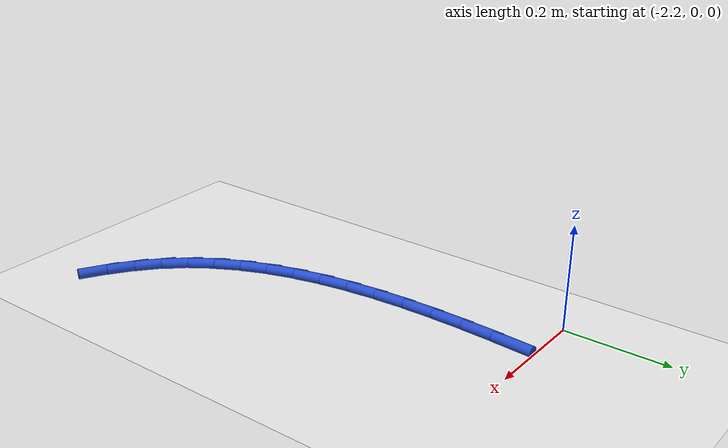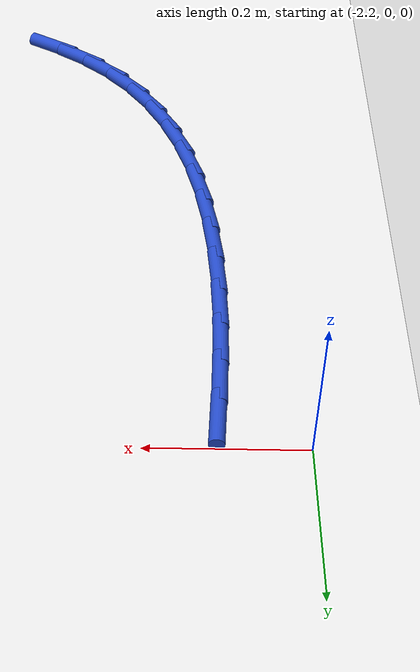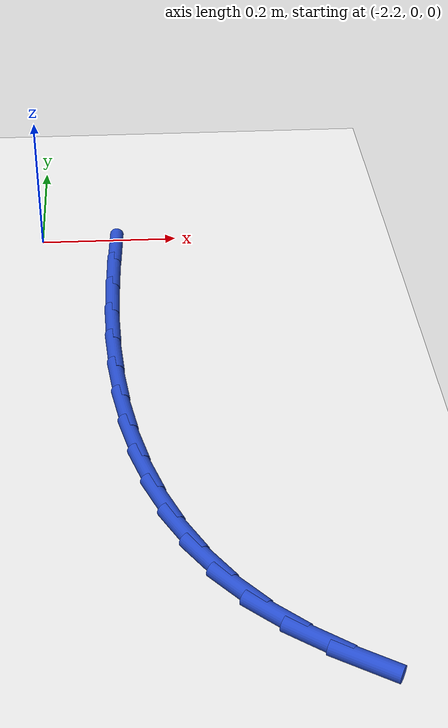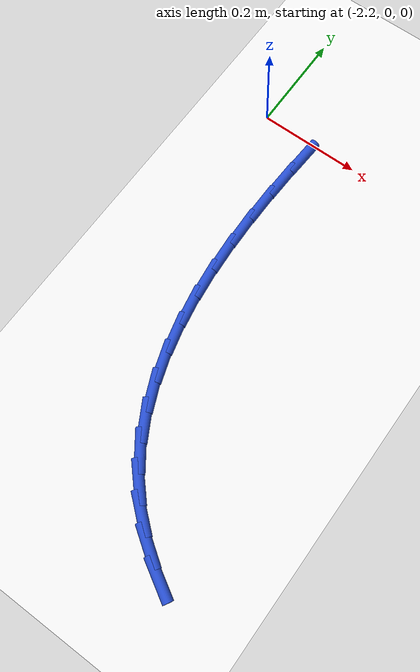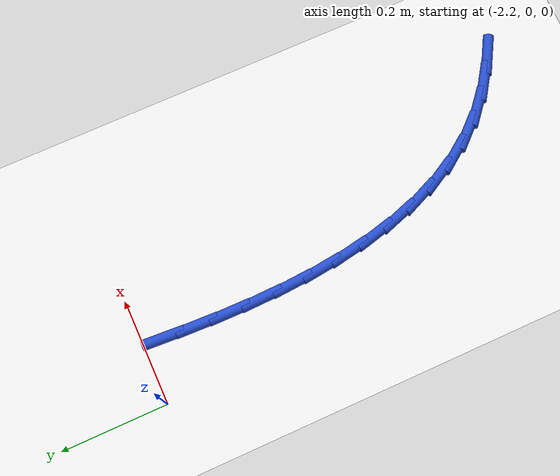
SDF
<sdf version="1.6">
 <world name="default">
  <model name="ground_plane">
   <static>1</static>
   <link name="link">
    <collision name="collision">
     <geometry><plane><normal>0 0 1</normal><size>100 100</size></plane></geometry>
     <surface><friction><ode><mu>100</mu><mu2>50</mu2></ode></friction></surface>
    </collision>
    <visual name="visual">
     <cast_shadows>0</cast_shadows>
     <geometry><plane><normal>0 0 1</normal><size>100 100</size></plane></geometry>
     <material>
      <script><uri>file://media/materials/scripts/gazebo.material</uri><name>Gazebo/WhiteGlow</name></script>
     </material>
    </visual>
   </link>
  </model>
  <model name="line">
   <link name="link_61">
    <pose>-2.0903475593382073 -0.03831779458019231 0.01 0 1.57 1.5109509280749143</pose>
    <collision name="collision">
     <geometry><cylinder><radius>0.01</radius><length>0.08</length></cylinder></geometry>
    </collision>
    <visual name="visual">
     <material>
      <script><name>Gazebo/Blue</name><uri>file://media/materials/scripts/gazebo.material</uri></script>
     </material>
     <geometry><cylinder><radius>0.01</radius><length>0.08</length></cylinder></geometry>
    </visual>
   </link>
   <link name="link_62">
    <pose>-2.0941192573070144 -0.10126656308504507 0.01 0 1.57 1.535300330727676</pose>
    <collision name="collision">
     <geometry><cylinder><radius>0.01</radius><length>0.08</length></cylinder></geometry>
    </collision>
    <visual name="visual">
     <material>
      <script><name>Gazebo/Blue</name><uri>file://media/materials/scripts/gazebo.material</uri></script>
     </material>
     <geometry><cylinder><radius>0.01</radius><length>0.08</length></cylinder></geometry>
    </visual>
   </link>
   <link name="link_63">
    <pose>-2.0963454747863377 -0.16395764550029823 0.01 0 1.57 1.5648592307884865</pose>
    <collision name="collision">
     <geometry><cylinder><radius>0.01</radius><length>0.08</length></cylinder></geometry>
    </collision>
    <visual name="visual">
     <material>
      <script><name>Gazebo/Blue</name><uri>file://media/materials/scripts/gazebo.material</uri></script>
     </material>
     <geometry><cylinder><radius>0.01</radius><length>0.08</length></cylinder></geometry>
    </visual>
   </link>
   <link name="link_64">
    <pose>-2.0967141966291263 -0.22606166234762026 0.01 0 1.57 -1.5413741870893625</pose>
    <collision name="collision">
     <geometry><cylinder><radius>0.01</radius><length>0.08</length></cylinder></geometry>
    </collision>
    <visual name="visual">
     <material>
      <script><name>Gazebo/Blue</name><uri>file://media/materials/scripts/gazebo.material</uri></script>
     </material>
     <geometry><cylinder><radius>0.01</radius><length>0.08</length></cylinder></geometry>
    </visual>
   </link>
   <link name="link_65">
    <pose>-2.0949134076883276 -0.28724923414868186 0.01 0 1.57 -1.499476222598133</pose>
    <collision name="collision">
     <geometry><cylinder><radius>0.01</radius><length>0.08</length></cylinder></geometry>
    </collision>
    <visual name="visual">
     <material>
      <script><name>Gazebo/Blue</name><uri>file://media/materials/scripts/gazebo.material</uri></script>
     </material>
     <geometry><cylinder><radius>0.01</radius><length>0.08</length></cylinder></geometry>
    </visual>
   </link>
   <link name="link_66">
    <pose>-2.09063109281689 -0.34719098142515403 0.01 0 1.57 -1.4501536890993132</pose>
    <collision name="collision">
     <geometry><cylinder><radius>0.01</radius><length>0.08</length></cylinder></geometry>
    </collision>
    <visual name="visual">
     <material>
      <script><name>Gazebo/Blue</name><uri>file://media/materials/scripts/gazebo.material</uri></script>
     </material>
     <geometry><cylinder><radius>0.01</radius><length>0.08</length></cylinder></geometry>
    </visual>
   </link>
   <link name="link_67">
    <pose>-2.0835552368677623 -0.40555752469870493 0.01 0 1.57 -1.3923901621880532</pose>
    <collision name="collision">
     <geometry><cylinder><radius>0.01</radius><length>0.08</length></cylinder></geometry>
    </collision>
    <visual name="visual">
     <material>
      <script><name>Gazebo/Blue</name><uri>file://media/materials/scripts/gazebo.material</uri></script>
     </material>
     <geometry><cylinder><radius>0.01</radius><length>0.08</length></cylinder></geometry>
    </visual>
   </link>
   <link name="link_68">
    <pose>-2.0733738246938933 -0.46201948449100566 0.01 0 1.57 -1.325089119948062</pose>
    <collision name="collision">
     <geometry><cylinder><radius>0.01</radius><length>0.08</length></cylinder></geometry>
    </collision>
    <visual name="visual">
     <material>
      <script><name>Gazebo/Blue</name><uri>file://media/materials/scripts/gazebo.material</uri></script>
     </material>
     <geometry><cylinder><radius>0.01</radius><length>0.08</length></cylinder></geometry>
    </visual>
   </link>
   <link name="link_69">
    <pose>-2.059774841148231 -0.5162474813237259 0.01 0 1.57 -1.2471826647641038</pose>
    <collision name="collision">
     <geometry><cylinder><radius>0.01</radius><length>0.08</length></cylinder></geometry>
    </collision>
    <visual name="visual">
     <material>
      <script><name>Gazebo/Blue</name><uri>file://media/materials/scripts/gazebo.material</uri></script>
     </material>
     <geometry><cylinder><radius>0.01</radius><length>0.08</length></cylinder></geometry>
    </visual>
   </link>
   <link name="link_70">
    <pose>-2.0424462710837235 -0.5679121357185366 0.01 0 1.57 -1.1578275490705991</pose>
    <collision name="collision">
     <geometry><cylinder><radius>0.01</radius><length>0.08</length></cylinder></geometry>
    </collision>
    <visual name="visual">
     <material>
      <script><name>Gazebo/Blue</name><uri>file://media/materials/scripts/gazebo.material</uri></script>
     </material>
     <geometry><cylinder><radius>0.01</radius><length>0.08</length></cylinder></geometry>
    </visual>
   </link>
   <link name="link_71">
    <pose>-2.0210760993533197 -0.6166840681971062 0.01 0 1.57 -1.056707276772007</pose>
    <collision name="collision">
     <geometry><cylinder><radius>0.01</radius><length>0.08</length></cylinder></geometry>
    </collision>
    <visual name="visual">
     <material>
      <script><name>Gazebo/Blue</name><uri>file://media/materials/scripts/gazebo.material</uri></script>
     </material>
     <geometry><cylinder><radius>0.01</radius><length>0.08</length></cylinder></geometry>
    </visual>
   </link>
   <link name="link_72">
    <pose>-1.9953523108099678 -0.6622338992811055 0.01 0 1.57 -0.9444155552899104</pose>
    <collision name="collision">
     <geometry><cylinder><radius>0.01</radius><length>0.08</length></cylinder></geometry>
    </collision>
    <visual name="visual">
     <material>
      <script><name>Gazebo/Blue</name><uri>file://media/materials/scripts/gazebo.material</uri></script>
     </material>
     <geometry><cylinder><radius>0.01</radius><length>0.08</length></cylinder></geometry>
    </visual>
   </link>
   <link name="link_73">
    <pose>-1.9649628903066159 -0.7042322494922045 0.01 0 1.57 -0.8228092749113857</pose>
    <collision name="collision">
     <geometry><cylinder><radius>0.01</radius><length>0.08</length></cylinder></geometry>
    </collision>
    <visual name="visual">
     <material>
      <script><name>Gazebo/Blue</name><uri>file://media/materials/scripts/gazebo.material</uri></script>
     </material>
     <geometry><cylinder><radius>0.01</radius><length>0.08</length></cylinder></geometry>
    </visual>
   </link>
   <link name="link_74">
    <pose>-1.9295958226962129 -0.7423497393520739 0.01 0 1.57 -0.6980712302088644</pose>
    <collision name="collision">
     <geometry><cylinder><radius>0.01</radius><length>0.08</length></cylinder></geometry>
    </collision>
    <visual name="visual">
     <material>
      <script><name>Gazebo/Blue</name><uri>file://media/materials/scripts/gazebo.material</uri></script>
     </material>
     <geometry><cylinder><radius>0.01</radius><length>0.08</length></cylinder></geometry>
    </visual>
   </link>
   <link name="link_75">
    <pose>-1.889053001393405 -0.7763650281412369 0.01 0 1.57 -0.5946063236285039</pose>
    <collision name="collision">
     <geometry><cylinder><radius>0.01</radius><length>0.08</length></cylinder></geometry>
    </collision>
    <visual name="visual">
     <material>
      <script><name>Gazebo/Blue</name><uri>file://media/materials/scripts/gazebo.material</uri></script>
     </material>
     <geometry><cylinder><radius>0.01</radius><length>0.08</length></cylinder></geometry>
    </visual>
   </link>
   <link name="link_76">
    <pose>-1.8439729597357395 -0.8068503023126381 0.01 0 1.57 -0.5207955618192911</pose>
    <collision name="collision">
     <geometry><cylinder><radius>0.01</radius><length>0.08</length></cylinder></geometry>
    </collision>
    <visual name="visual">
     <material>
      <script><name>Gazebo/Blue</name><uri>file://media/materials/scripts/gazebo.material</uri></script>
     </material>
     <geometry><cylinder><radius>0.01</radius><length>0.08</length></cylinder></geometry>
    </visual>
   </link>
  </model>
 </world>
</sdf>
